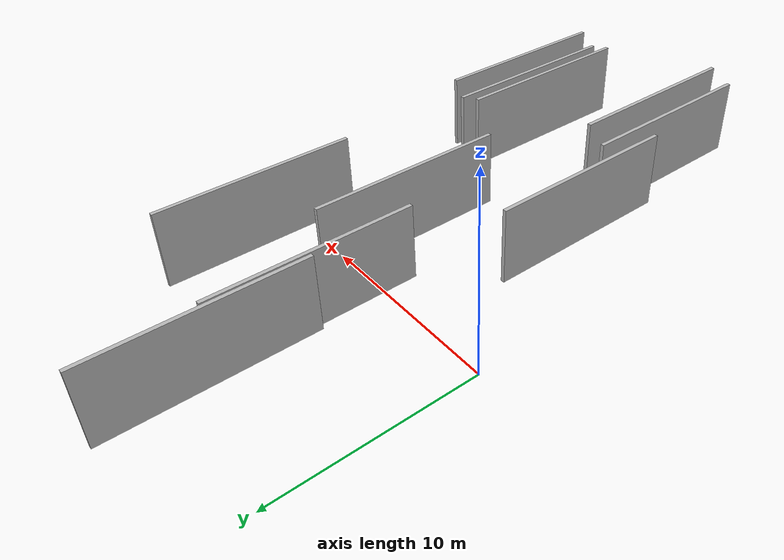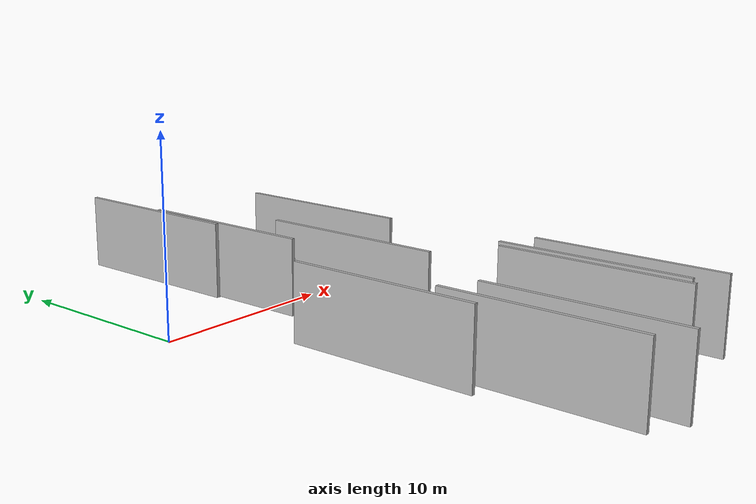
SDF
<sdf version="1.6">
 <world name="default">
  <scene>
   <sky><clouds><speed>12</speed></clouds></sky>
   <ambient>0.4 0.4 0.4 1</ambient>
   <background>0.7 0.7 0.7 1</background>
   <shadows>1</shadows>
  </scene>
  <gravity>0 0 -9.8066</gravity>
  <magnetic_field>6e-06 2.3e-05 -4.2e-05</magnetic_field>
  <physics default="0" name="default_physics" type="ode">
   <ode>
    <solver>
     <type>quick</type>
     <iters>10</iters>
     <sor>1.0</sor>
     <use_dynamic_moi_rescaling>0</use_dynamic_moi_rescaling>
    </solver>
    <constraints>
     <cfm>0</cfm>
     <erp>0.2</erp>
     <contact_max_correcting_vel>100</contact_max_correcting_vel>
     <contact_surface_layer>0.001</contact_surface_layer>
    </constraints>
   </ode>
   <max_step_size>0.004</max_step_size>
   <real_time_factor>1</real_time_factor>
   <real_time_update_rate>250</real_time_update_rate>
  </physics>
  <light name="sun" type="directional">
   <pose>0 0 10 0 0 0</pose>
   <diffuse>0.8 0.8 0.8 1</diffuse>
   <specular>0.2 0.2 0.2 1</specular>
   <attenuation>
    <range>1000</range>
    <constant>0.9</constant>
    <linear>0.01</linear>
    <quadratic>0.001</quadratic>
   </attenuation>
   <direction>-0.5 0.1 -0.9</direction>
  </light>
  <model name="grey_wall_1">
   <static>1</static>
   <pose>6.6969 3.2072 0.0 0.000000 0.000000 1.570796</pose>
   <link name="link">
    <pose>0 0 2.00 0 0 0</pose>
    <collision name="collision"><geometry><box><size>10.00 0.2 4.00</size></box></geometry></collision>
    <visual name="visual">
     <cast_shadows>0</cast_shadows>
     <geometry><box><size>10.00 0.2 4.00</size></box></geometry>
     <material>
      <script>
       <uri>model://HANNAS_wall/materials/scripts</uri>
       <uri>model://HANNAS_wall/materials/textures</uri>
       <name>vrc/HANNAS_wall</name>
      </script>
     </material>
    </visual>
   </link>
  </model>
  <model name="grey_wall_2">
   <static>1</static>
   <pose>9.0955 -3.3960 0.0 0.000000 0.000000 1.570796</pose>
   <link name="link">
    <pose>0 0 2.00 0 0 0</pose>
    <collision name="collision"><geometry><box><size>10.00 0.2 4.00</size></box></geometry></collision>
    <visual name="visual">
     <cast_shadows>0</cast_shadows>
     <geometry><box><size>10.00 0.2 4.00</size></box></geometry>
     <material>
      <script>
       <uri>model://HANNAS_wall/materials/scripts</uri>
       <uri>model://HANNAS_wall/materials/textures</uri>
       <name>vrc/HANNAS_wall</name>
      </script>
     </material>
    </visual>
   </link>
  </model>
  <model name="grey_wall_3">
   <static>1</static>
   <pose>3.7590 -9.6122 0.0 0.000000 0.000000 1.570796</pose>
   <link name="link">
    <pose>0 0 2.00 0 0 0</pose>
    <collision name="collision"><geometry><box><size>10.00 0.2 4.00</size></box></geometry></collision>
    <visual name="visual">
     <cast_shadows>0</cast_shadows>
     <geometry><box><size>10.00 0.2 4.00</size></box></geometry>
     <material>
      <script>
       <uri>model://HANNAS_wall/materials/scripts</uri>
       <uri>model://HANNAS_wall/materials/textures</uri>
       <name>vrc/HANNAS_wall</name>
      </script>
     </material>
    </visual>
   </link>
  </model>
  <model name="grey_wall_4">
   <static>1</static>
   <pose>6.4185 8.3638 0.0 0.000000 0.000000 1.570796</pose>
   <link name="link">
    <pose>0 0 2.00 0 0 0</pose>
    <collision name="collision"><geometry><box><size>10.00 0.2 4.00</size></box></geometry></collision>
    <visual name="visual">
     <cast_shadows>0</cast_shadows>
     <geometry><box><size>10.00 0.2 4.00</size></box></geometry>
     <material>
      <script>
       <uri>model://HANNAS_wall/materials/scripts</uri>
       <uri>model://HANNAS_wall/materials/textures</uri>
       <name>vrc/HANNAS_wall</name>
      </script>
     </material>
    </visual>
   </link>
  </model>
  <model name="grey_wall_5">
   <static>1</static>
   <pose>12.2239 -15.2327 0.0 0.000000 0.000000 1.570796</pose>
   <link name="link">
    <pose>0 0 2.00 0 0 0</pose>
    <collision name="collision"><geometry><box><size>10.00 0.2 4.00</size></box></geometry></collision>
    <visual name="visual">
     <cast_shadows>0</cast_shadows>
     <geometry><box><size>10.00 0.2 4.00</size></box></geometry>
     <material>
      <script>
       <uri>model://HANNAS_wall/materials/scripts</uri>
       <uri>model://HANNAS_wall/materials/textures</uri>
       <name>vrc/HANNAS_wall</name>
      </script>
     </material>
    </visual>
   </link>
  </model>
  <model name="grey_wall_6">
   <static>1</static>
   <pose>4.8091 -16.8813 0.0 0.000000 0.000000 1.570796</pose>
   <link name="link">
    <pose>0 0 2.00 0 0 0</pose>
    <collision name="collision"><geometry><box><size>10.00 0.2 4.00</size></box></geometry></collision>
    <visual name="visual">
     <cast_shadows>0</cast_shadows>
     <geometry><box><size>10.00 0.2 4.00</size></box></geometry>
     <material>
      <script>
       <uri>model://HANNAS_wall/materials/scripts</uri>
       <uri>model://HANNAS_wall/materials/textures</uri>
       <name>vrc/HANNAS_wall</name>
      </script>
     </material>
    </visual>
   </link>
  </model>
  <model name="grey_wall_7">
   <static>1</static>
   <pose>13.2934 2.2460 0.0 0.000000 0.000000 1.570796</pose>
   <link name="link">
    <pose>0 0 2.00 0 0 0</pose>
    <collision name="collision"><geometry><box><size>10.00 0.2 4.00</size></box></geometry></collision>
    <visual name="visual">
     <cast_shadows>0</cast_shadows>
     <geometry><box><size>10.00 0.2 4.00</size></box></geometry>
     <material>
      <script>
       <uri>model://HANNAS_wall/materials/scripts</uri>
       <uri>model://HANNAS_wall/materials/textures</uri>
       <name>vrc/HANNAS_wall</name>
      </script>
     </material>
    </visual>
   </link>
  </model>
  <model name="grey_wall_8">
   <static>1</static>
   <pose>14.6812 -15.7550 0.0 0.000000 0.000000 1.570796</pose>
   <link name="link">
    <pose>0 0 2.00 0 0 0</pose>
    <collision name="collision"><geometry><box><size>10.00 0.2 4.00</size></box></geometry></collision>
    <visual name="visual">
     <cast_shadows>0</cast_shadows>
     <geometry><box><size>10.00 0.2 4.00</size></box></geometry>
     <material>
      <script>
       <uri>model://HANNAS_wall/materials/scripts</uri>
       <uri>model://HANNAS_wall/materials/textures</uri>
       <name>vrc/HANNAS_wall</name>
      </script>
     </material>
    </visual>
   </link>
  </model>
  <model name="grey_wall_9">
   <static>1</static>
   <pose>6.5919 -17.8350 0.0 0.000000 0.000000 1.570796</pose>
   <link name="link">
    <pose>0 0 2.00 0 0 0</pose>
    <collision name="collision"><geometry><box><size>10.00 0.2 4.00</size></box></geometry></collision>
    <visual name="visual">
     <cast_shadows>0</cast_shadows>
     <geometry><box><size>10.00 0.2 4.00</size></box></geometry>
     <material>
      <script>
       <uri>model://HANNAS_wall/materials/scripts</uri>
       <uri>model://HANNAS_wall/materials/textures</uri>
       <name>vrc/HANNAS_wall</name>
      </script>
     </material>
    </visual>
   </link>
  </model>
  <model name="grey_wall_10">
   <static>1</static>
   <pose>12.9278 -14.7882 0.0 0.000000 0.000000 1.570796</pose>
   <link name="link">
    <pose>0 0 2.00 0 0 0</pose>
    <collision name="collision"><geometry><box><size>10.00 0.2 4.00</size></box></geometry></collision>
    <visual name="visual">
     <cast_shadows>0</cast_shadows>
     <geometry><box><size>10.00 0.2 4.00</size></box></geometry>
     <material>
      <script>
       <uri>model://HANNAS_wall/materials/scripts</uri>
       <uri>model://HANNAS_wall/materials/textures</uri>
       <name>vrc/HANNAS_wall</name>
      </script>
     </material>
    </visual>
   </link>
  </model>
 </world>
</sdf>
